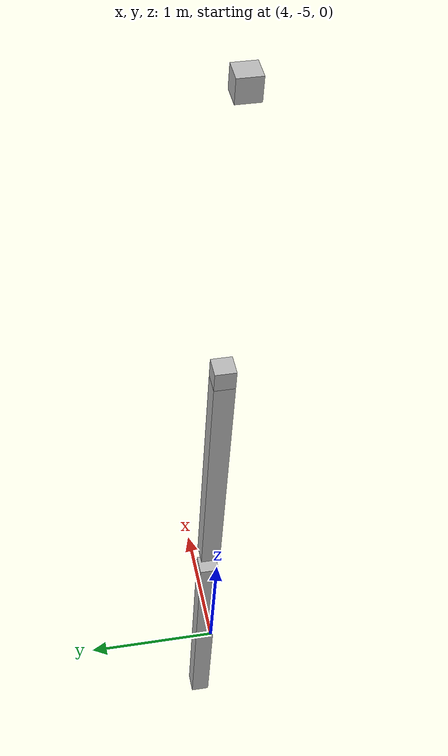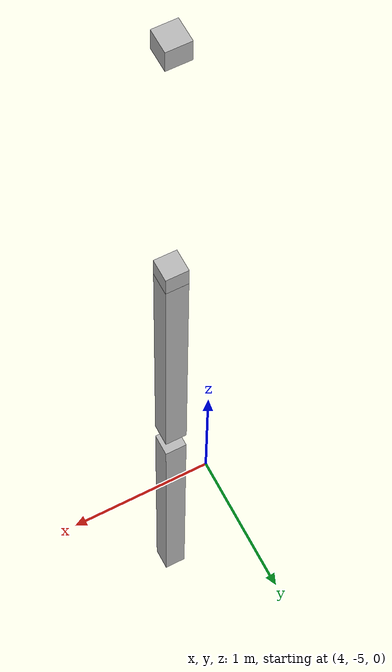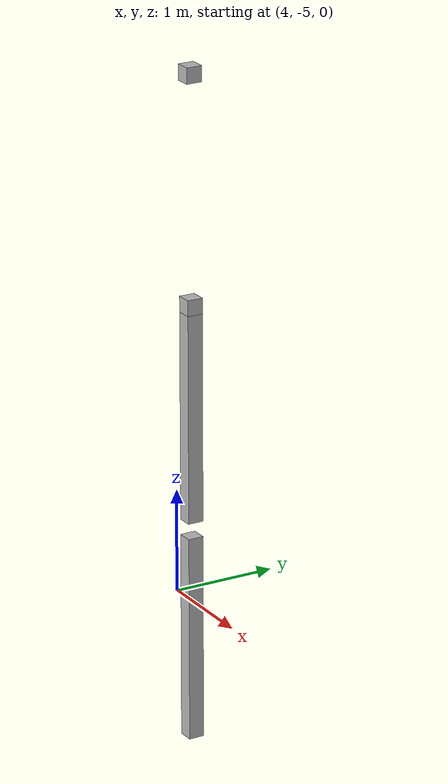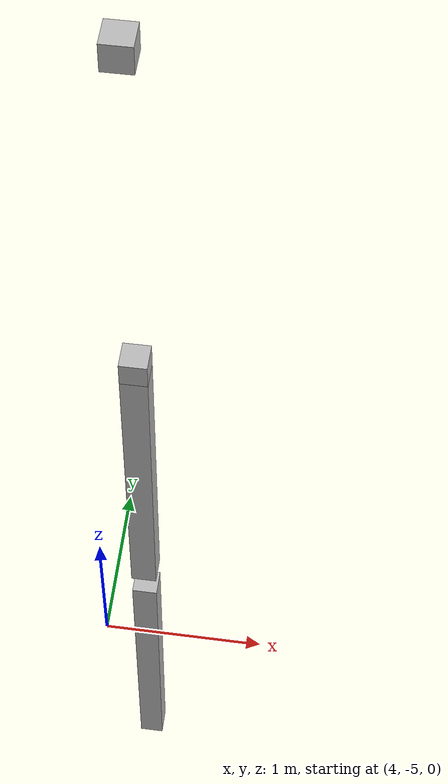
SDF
<sdf version="1.7">
 <world name="default">
  <model name="orthogonal_747_2.000.15_TS">
   <static>1</static>
   <link name="z_link_1_0_5">
    <inertial>
     <mass>1</mass>
     <inertia>
      <ixx>0.166667</ixx>
      <ixy>0</ixy>
      <ixz>0</ixz>
      <iyy>0.166667</iyy>
      <iyz>0</iyz>
      <izz>0.166667</izz>
     </inertia>
    </inertial>
    <pose>10.75 0 2.15 0 -0 0</pose>
    <visual name="visual_0">
     <laser_retro>911</laser_retro>
     <geometry><box><size>0.15 1e-06 2</size></box></geometry>
     <material>
      <script><name>Gazebo/Grey</name><uri>file://media/materials/scripts/gazebo.material</uri></script>
      <shader type="pixel"><normal_map>__default__</normal_map></shader>
      <ambient>0.678 0.498 0.659 1</ambient>
      <diffuse>0.7 0.7 0.7 1</diffuse>
      <specular>0.01 0.01 0.01 1</specular>
      <emissive>0 0 0 1</emissive>
     </material>
     <pose>0 -0.075 0 0 -0 0</pose>
     <transparency>1</transparency>
    </visual>
    <visual name="visual_1">
     <laser_retro>912</laser_retro>
     <geometry><box><size>0.15 1e-06 2</size></box></geometry>
     <material>
      <script><name>Gazebo/Grey</name><uri>file://media/materials/scripts/gazebo.material</uri></script>
      <shader type="pixel"><normal_map>__default__</normal_map></shader>
      <ambient>0.447 0.624 0.812 1</ambient>
      <diffuse>0.7 0.7 0.7 1</diffuse>
      <specular>0.01 0.01 0.01 1</specular>
      <emissive>0 0 0 1</emissive>
     </material>
     <pose>0 0.075 0 0 -0 0</pose>
     <transparency>1</transparency>
    </visual>
    <visual name="visual_2">
     <laser_retro>913</laser_retro>
     <geometry><box><size>0.15 0.15 1e-06</size></box></geometry>
     <material>
      <script><name>Gazebo/Grey</name><uri>file://media/materials/scripts/gazebo.material</uri></script>
      <shader type="pixel"><normal_map>__default__</normal_map></shader>
      <ambient>0.988 0.686 0.243 1</ambient>
      <diffuse>0.7 0.7 0.7 1</diffuse>
      <specular>0.01 0.01 0.01 1</specular>
      <emissive>0 0 0 1</emissive>
     </material>
     <pose>0 0 -1 0 -0 0</pose>
     <transparency>1</transparency>
    </visual>
    <visual name="visual_3">
     <laser_retro>914</laser_retro>
     <geometry><box><size>1e-06 0.15 2</size></box></geometry>
     <material>
      <script><name>Gazebo/Grey</name><uri>file://media/materials/scripts/gazebo.material</uri></script>
      <shader type="pixel"><normal_map>__default__</normal_map></shader>
      <ambient>0.988 0.914 0.31 1</ambient>
      <diffuse>0.7 0.7 0.7 1</diffuse>
      <specular>0.01 0.01 0.01 1</specular>
      <emissive>0 0 0 1</emissive>
     </material>
     <pose>0.075 0 0 0 -0 0</pose>
     <transparency>1</transparency>
    </visual>
    <visual name="visual_4">
     <laser_retro>915</laser_retro>
     <geometry><box><size>0.15 0.15 1e-06</size></box></geometry>
     <material>
      <script><name>Gazebo/Grey</name><uri>file://media/materials/scripts/gazebo.material</uri></script>
      <shader type="pixel"><normal_map>__default__</normal_map></shader>
      <ambient>0.937 0.161 0.161 1</ambient>
      <diffuse>0.7 0.7 0.7 1</diffuse>
      <specular>0.01 0.01 0.01 1</specular>
      <emissive>0 0 0 1</emissive>
     </material>
     <pose>0 0 1 0 -0 0</pose>
     <transparency>1</transparency>
    </visual>
    <visual name="visual_5">
     <laser_retro>916</laser_retro>
     <geometry><box><size>1e-06 0.15 2</size></box></geometry>
     <material>
      <script><name>Gazebo/Grey</name><uri>file://media/materials/scripts/gazebo.material</uri></script>
      <shader type="pixel"><normal_map>__default__</normal_map></shader>
      <ambient>0.541 0.886 0.204 1</ambient>
      <diffuse>0.7 0.7 0.7 1</diffuse>
      <specular>0.01 0.01 0.01 1</specular>
      <emissive>0 0 0 1</emissive>
     </material>
     <pose>-0.075 0 0 0 -0 0</pose>
     <transparency>1</transparency>
    </visual>
    <visual name="visual_texture">
     <geometry><box><size>0.149985 0.149985 1.9998</size></box></geometry>
     <material>
      <script>
       <uri>model://BASE_MODELS/simple_block_v2_textured/materials/scripts</uri>
       <uri>model://BASE_MODELS/simple_block_v2_textured/materials/textures</uri>
       <name>metal</name>
      </script>
     </material>
     <laser_retro>917</laser_retro>
    </visual>
    <collision name="collision">
     <geometry><box><size>0.15 0.15 2</size></box></geometry>
     <surface>
      <friction>
       <ode><mu>1</mu><mu2>1</mu2><fdir1>0 0 0</fdir1><slip1>0</slip1><slip2>0</slip2></ode>
       <torsional>
        <coefficient>1</coefficient>
        <patch_radius>0</patch_radius>
        <surface_radius>0</surface_radius>
        <use_patch_radius>1</use_patch_radius>
        <ode><slip>0</slip></ode>
       </torsional>
      </friction>
      <bounce><restitution_coefficient>0</restitution_coefficient><threshold>1e+06</threshold></bounce>
      <contact>
       <collide_without_contact>0</collide_without_contact>
       <collide_without_contact_bitmask>1</collide_without_contact_bitmask>
       <collide_bitmask>1</collide_bitmask>
       <ode>
        <soft_cfm>0</soft_cfm>
        <soft_erp>0.2</soft_erp>
        <kp>1e+13</kp>
        <kd>1</kd>
        <max_vel>0.01</max_vel>
        <min_depth>0</min_depth>
       </ode>
       <bullet>
        <split_impulse>1</split_impulse>
        <split_impulse_penetration_threshold>-0.01</split_impulse_penetration_threshold>
        <soft_cfm>0</soft_cfm>
        <soft_erp>0.2</soft_erp>
        <kp>1e+13</kp>
        <kd>1</kd>
       </bullet>
      </contact>
     </surface>
    </collision>
   </link>
   <link name="u_link_2_0_5">
    <inertial>
     <mass>1</mass>
     <inertia>
      <ixx>0.166667</ixx>
      <ixy>0</ixy>
      <ixz>0</ixz>
      <iyy>0.166667</iyy>
      <iyz>0</iyz>
      <izz>0.166667</izz>
     </inertia>
    </inertial>
    <pose>10.75 0 5.375 0 -0 0</pose>
    <visual name="visual_0">
     <laser_retro>1807</laser_retro>
     <geometry><box><size>0.15 1e-06 0.15</size></box></geometry>
     <material>
      <script><name>Gazebo/Grey</name><uri>file://media/materials/scripts/gazebo.material</uri></script>
      <shader type="pixel"><normal_map>__default__</normal_map></shader>
      <ambient>0.678 0.498 0.659 1</ambient>
      <diffuse>0.7 0.7 0.7 1</diffuse>
      <specular>0.01 0.01 0.01 1</specular>
      <emissive>0 0 0 1</emissive>
     </material>
     <pose>0 -0.075 0 0 -0 0</pose>
     <transparency>1</transparency>
    </visual>
    <visual name="visual_1">
     <laser_retro>1808</laser_retro>
     <geometry><box><size>0.15 1e-06 0.15</size></box></geometry>
     <material>
      <script><name>Gazebo/Grey</name><uri>file://media/materials/scripts/gazebo.material</uri></script>
      <shader type="pixel"><normal_map>__default__</normal_map></shader>
      <ambient>0.447 0.624 0.812 1</ambient>
      <diffuse>0.7 0.7 0.7 1</diffuse>
      <specular>0.01 0.01 0.01 1</specular>
      <emissive>0 0 0 1</emissive>
     </material>
     <pose>0 0.075 0 0 -0 0</pose>
     <transparency>1</transparency>
    </visual>
    <visual name="visual_2">
     <laser_retro>1809</laser_retro>
     <geometry><box><size>0.15 0.15 1e-06</size></box></geometry>
     <material>
      <script><name>Gazebo/Grey</name><uri>file://media/materials/scripts/gazebo.material</uri></script>
      <shader type="pixel"><normal_map>__default__</normal_map></shader>
      <ambient>0.988 0.686 0.243 1</ambient>
      <diffuse>0.7 0.7 0.7 1</diffuse>
      <specular>0.01 0.01 0.01 1</specular>
      <emissive>0 0 0 1</emissive>
     </material>
     <pose>0 0 -0.075 0 -0 0</pose>
     <transparency>1</transparency>
    </visual>
    <visual name="visual_3">
     <laser_retro>1810</laser_retro>
     <geometry><box><size>1e-06 0.15 0.15</size></box></geometry>
     <material>
      <script><name>Gazebo/Grey</name><uri>file://media/materials/scripts/gazebo.material</uri></script>
      <shader type="pixel"><normal_map>__default__</normal_map></shader>
      <ambient>0.988 0.914 0.31 1</ambient>
      <diffuse>0.7 0.7 0.7 1</diffuse>
      <specular>0.01 0.01 0.01 1</specular>
      <emissive>0 0 0 1</emissive>
     </material>
     <pose>0.075 0 0 0 -0 0</pose>
     <transparency>1</transparency>
    </visual>
    <visual name="visual_4">
     <laser_retro>1811</laser_retro>
     <geometry><box><size>0.15 0.15 1e-06</size></box></geometry>
     <material>
      <script><name>Gazebo/Grey</name><uri>file://media/materials/scripts/gazebo.material</uri></script>
      <shader type="pixel"><normal_map>__default__</normal_map></shader>
      <ambient>0.937 0.161 0.161 1</ambient>
      <diffuse>0.7 0.7 0.7 1</diffuse>
      <specular>0.01 0.01 0.01 1</specular>
      <emissive>0 0 0 1</emissive>
     </material>
     <pose>0 0 0.075 0 -0 0</pose>
     <transparency>1</transparency>
    </visual>
    <visual name="visual_5">
     <laser_retro>1812</laser_retro>
     <geometry><box><size>1e-06 0.15 0.15</size></box></geometry>
     <material>
      <script><name>Gazebo/Grey</name><uri>file://media/materials/scripts/gazebo.material</uri></script>
      <shader type="pixel"><normal_map>__default__</normal_map></shader>
      <ambient>0.541 0.886 0.204 1</ambient>
      <diffuse>0.7 0.7 0.7 1</diffuse>
      <specular>0.01 0.01 0.01 1</specular>
      <emissive>0 0 0 1</emissive>
     </material>
     <pose>-0.075 0 0 0 -0 0</pose>
     <transparency>1</transparency>
    </visual>
    <visual name="visual_texture">
     <geometry><box><size>0.149985 0.149985 0.149985</size></box></geometry>
     <material>
      <script>
       <uri>model://BASE_MODELS/simple_block_v2_textured/materials/scripts</uri>
       <uri>model://BASE_MODELS/simple_block_v2_textured/materials/textures</uri>
       <name>metal</name>
      </script>
     </material>
     <laser_retro>1813</laser_retro>
    </visual>
    <collision name="collision">
     <geometry><box><size>0.15 0.15 0.15</size></box></geometry>
     <surface>
      <friction>
       <ode><mu>1</mu><mu2>1</mu2><fdir1>0 0 0</fdir1><slip1>0</slip1><slip2>0</slip2></ode>
       <torsional>
        <coefficient>1</coefficient>
        <patch_radius>0</patch_radius>
        <surface_radius>0</surface_radius>
        <use_patch_radius>1</use_patch_radius>
        <ode><slip>0</slip></ode>
       </torsional>
      </friction>
      <bounce><restitution_coefficient>0</restitution_coefficient><threshold>1e+06</threshold></bounce>
      <contact>
       <collide_without_contact>0</collide_without_contact>
       <collide_without_contact_bitmask>1</collide_without_contact_bitmask>
       <collide_bitmask>1</collide_bitmask>
       <ode>
        <soft_cfm>0</soft_cfm>
        <soft_erp>0.2</soft_erp>
        <kp>1e+13</kp>
        <kd>1</kd>
        <max_vel>0.01</max_vel>
        <min_depth>0</min_depth>
       </ode>
       <bullet>
        <split_impulse>1</split_impulse>
        <split_impulse_penetration_threshold>-0.01</split_impulse_penetration_threshold>
        <soft_cfm>0</soft_cfm>
        <soft_erp>0.2</soft_erp>
        <kp>1e+13</kp>
        <kd>1</kd>
       </bullet>
      </contact>
     </surface>
    </collision>
   </link>
   <link name="z_link_2_0_5">
    <inertial>
     <mass>1</mass>
     <inertia>
      <ixx>0.166667</ixx>
      <ixy>0</ixy>
      <ixz>0</ixz>
      <iyy>0.166667</iyy>
      <iyz>0</iyz>
      <izz>0.166667</izz>
     </inertia>
    </inertial>
    <pose>10.75 0 4.3 0 -0 0</pose>
    <visual name="visual_0">
     <laser_retro>1814</laser_retro>
     <geometry><box><size>0.15 1e-06 2</size></box></geometry>
     <material>
      <script><name>Gazebo/Grey</name><uri>file://media/materials/scripts/gazebo.material</uri></script>
      <shader type="pixel"><normal_map>__default__</normal_map></shader>
      <ambient>0.678 0.498 0.659 1</ambient>
      <diffuse>0.7 0.7 0.7 1</diffuse>
      <specular>0.01 0.01 0.01 1</specular>
      <emissive>0 0 0 1</emissive>
     </material>
     <pose>0 -0.075 0 0 -0 0</pose>
     <transparency>1</transparency>
    </visual>
    <visual name="visual_1">
     <laser_retro>1815</laser_retro>
     <geometry><box><size>0.15 1e-06 2</size></box></geometry>
     <material>
      <script><name>Gazebo/Grey</name><uri>file://media/materials/scripts/gazebo.material</uri></script>
      <shader type="pixel"><normal_map>__default__</normal_map></shader>
      <ambient>0.447 0.624 0.812 1</ambient>
      <diffuse>0.7 0.7 0.7 1</diffuse>
      <specular>0.01 0.01 0.01 1</specular>
      <emissive>0 0 0 1</emissive>
     </material>
     <pose>0 0.075 0 0 -0 0</pose>
     <transparency>1</transparency>
    </visual>
    <visual name="visual_2">
     <laser_retro>1816</laser_retro>
     <geometry><box><size>0.15 0.15 1e-06</size></box></geometry>
     <material>
      <script><name>Gazebo/Grey</name><uri>file://media/materials/scripts/gazebo.material</uri></script>
      <shader type="pixel"><normal_map>__default__</normal_map></shader>
      <ambient>0.988 0.686 0.243 1</ambient>
      <diffuse>0.7 0.7 0.7 1</diffuse>
      <specular>0.01 0.01 0.01 1</specular>
      <emissive>0 0 0 1</emissive>
     </material>
     <pose>0 0 -1 0 -0 0</pose>
     <transparency>1</transparency>
    </visual>
    <visual name="visual_3">
     <laser_retro>1817</laser_retro>
     <geometry><box><size>1e-06 0.15 2</size></box></geometry>
     <material>
      <script><name>Gazebo/Grey</name><uri>file://media/materials/scripts/gazebo.material</uri></script>
      <shader type="pixel"><normal_map>__default__</normal_map></shader>
      <ambient>0.988 0.914 0.31 1</ambient>
      <diffuse>0.7 0.7 0.7 1</diffuse>
      <specular>0.01 0.01 0.01 1</specular>
      <emissive>0 0 0 1</emissive>
     </material>
     <pose>0.075 0 0 0 -0 0</pose>
     <transparency>1</transparency>
    </visual>
    <visual name="visual_4">
     <laser_retro>1818</laser_retro>
     <geometry><box><size>0.15 0.15 1e-06</size></box></geometry>
     <material>
      <script><name>Gazebo/Grey</name><uri>file://media/materials/scripts/gazebo.material</uri></script>
      <shader type="pixel"><normal_map>__default__</normal_map></shader>
      <ambient>0.937 0.161 0.161 1</ambient>
      <diffuse>0.7 0.7 0.7 1</diffuse>
      <specular>0.01 0.01 0.01 1</specular>
      <emissive>0 0 0 1</emissive>
     </material>
     <pose>0 0 1 0 -0 0</pose>
     <transparency>1</transparency>
    </visual>
    <visual name="visual_5">
     <laser_retro>1819</laser_retro>
     <geometry><box><size>1e-06 0.15 2</size></box></geometry>
     <material>
      <script><name>Gazebo/Grey</name><uri>file://media/materials/scripts/gazebo.material</uri></script>
      <shader type="pixel"><normal_map>__default__</normal_map></shader>
      <ambient>0.541 0.886 0.204 1</ambient>
      <diffuse>0.7 0.7 0.7 1</diffuse>
      <specular>0.01 0.01 0.01 1</specular>
      <emissive>0 0 0 1</emissive>
     </material>
     <pose>-0.075 0 0 0 -0 0</pose>
     <transparency>1</transparency>
    </visual>
    <visual name="visual_texture">
     <geometry><box><size>0.149985 0.149985 1.9998</size></box></geometry>
     <material>
      <script>
       <uri>model://BASE_MODELS/simple_block_v2_textured/materials/scripts</uri>
       <uri>model://BASE_MODELS/simple_block_v2_textured/materials/textures</uri>
       <name>metal</name>
      </script>
     </material>
     <laser_retro>1820</laser_retro>
    </visual>
    <collision name="collision">
     <geometry><box><size>0.15 0.15 2</size></box></geometry>
     <surface>
      <friction>
       <ode><mu>1</mu><mu2>1</mu2><fdir1>0 0 0</fdir1><slip1>0</slip1><slip2>0</slip2></ode>
       <torsional>
        <coefficient>1</coefficient>
        <patch_radius>0</patch_radius>
        <surface_radius>0</surface_radius>
        <use_patch_radius>1</use_patch_radius>
        <ode><slip>0</slip></ode>
       </torsional>
      </friction>
      <bounce><restitution_coefficient>0</restitution_coefficient><threshold>1e+06</threshold></bounce>
      <contact>
       <collide_without_contact>0</collide_without_contact>
       <collide_without_contact_bitmask>1</collide_without_contact_bitmask>
       <collide_bitmask>1</collide_bitmask>
       <ode>
        <soft_cfm>0</soft_cfm>
        <soft_erp>0.2</soft_erp>
        <kp>1e+13</kp>
        <kd>1</kd>
        <max_vel>0.01</max_vel>
        <min_depth>0</min_depth>
       </ode>
       <bullet>
        <split_impulse>1</split_impulse>
        <split_impulse_penetration_threshold>-0.01</split_impulse_penetration_threshold>
        <soft_cfm>0</soft_cfm>
        <soft_erp>0.2</soft_erp>
        <kp>1e+13</kp>
        <kd>1</kd>
       </bullet>
      </contact>
     </surface>
    </collision>
   </link>
   <link name="u_link_3_0_5">
    <inertial>
     <mass>1</mass>
     <inertia>
      <ixx>0.166667</ixx>
      <ixy>0</ixy>
      <ixz>0</ixz>
      <iyy>0.166667</iyy>
      <iyz>0</iyz>
      <izz>0.166667</izz>
     </inertia>
    </inertial>
    <pose>10.75 0 7.525 0 -0 0</pose>
    <visual name="visual_0">
     <laser_retro>2710</laser_retro>
     <geometry><box><size>0.15 1e-06 0.15</size></box></geometry>
     <material>
      <script><name>Gazebo/Grey</name><uri>file://media/materials/scripts/gazebo.material</uri></script>
      <shader type="pixel"><normal_map>__default__</normal_map></shader>
      <ambient>0.678 0.498 0.659 1</ambient>
      <diffuse>0.7 0.7 0.7 1</diffuse>
      <specular>0.01 0.01 0.01 1</specular>
      <emissive>0 0 0 1</emissive>
     </material>
     <pose>0 -0.075 0 0 -0 0</pose>
     <transparency>1</transparency>
    </visual>
    <visual name="visual_1">
     <laser_retro>2711</laser_retro>
     <geometry><box><size>0.15 1e-06 0.15</size></box></geometry>
     <material>
      <script><name>Gazebo/Grey</name><uri>file://media/materials/scripts/gazebo.material</uri></script>
      <shader type="pixel"><normal_map>__default__</normal_map></shader>
      <ambient>0.447 0.624 0.812 1</ambient>
      <diffuse>0.7 0.7 0.7 1</diffuse>
      <specular>0.01 0.01 0.01 1</specular>
      <emissive>0 0 0 1</emissive>
     </material>
     <pose>0 0.075 0 0 -0 0</pose>
     <transparency>1</transparency>
    </visual>
    <visual name="visual_2">
     <laser_retro>2712</laser_retro>
     <geometry><box><size>0.15 0.15 1e-06</size></box></geometry>
     <material>
      <script><name>Gazebo/Grey</name><uri>file://media/materials/scripts/gazebo.material</uri></script>
      <shader type="pixel"><normal_map>__default__</normal_map></shader>
      <ambient>0.988 0.686 0.243 1</ambient>
      <diffuse>0.7 0.7 0.7 1</diffuse>
      <specular>0.01 0.01 0.01 1</specular>
      <emissive>0 0 0 1</emissive>
     </material>
     <pose>0 0 -0.075 0 -0 0</pose>
     <transparency>1</transparency>
    </visual>
    <visual name="visual_3">
     <laser_retro>2713</laser_retro>
     <geometry><box><size>1e-06 0.15 0.15</size></box></geometry>
     <material>
      <script><name>Gazebo/Grey</name><uri>file://media/materials/scripts/gazebo.material</uri></script>
      <shader type="pixel"><normal_map>__default__</normal_map></shader>
      <ambient>0.988 0.914 0.31 1</ambient>
      <diffuse>0.7 0.7 0.7 1</diffuse>
      <specular>0.01 0.01 0.01 1</specular>
      <emissive>0 0 0 1</emissive>
     </material>
     <pose>0.075 0 0 0 -0 0</pose>
     <transparency>1</transparency>
    </visual>
    <visual name="visual_4">
     <laser_retro>2714</laser_retro>
     <geometry><box><size>0.15 0.15 1e-06</size></box></geometry>
     <material>
      <script><name>Gazebo/Grey</name><uri>file://media/materials/scripts/gazebo.material</uri></script>
      <shader type="pixel"><normal_map>__default__</normal_map></shader>
      <ambient>0.937 0.161 0.161 1</ambient>
      <diffuse>0.7 0.7 0.7 1</diffuse>
      <specular>0.01 0.01 0.01 1</specular>
      <emissive>0 0 0 1</emissive>
     </material>
     <pose>0 0 0.075 0 -0 0</pose>
     <transparency>1</transparency>
    </visual>
    <visual name="visual_5">
     <laser_retro>2715</laser_retro>
     <geometry><box><size>1e-06 0.15 0.15</size></box></geometry>
     <material>
      <script><name>Gazebo/Grey</name><uri>file://media/materials/scripts/gazebo.material</uri></script>
      <shader type="pixel"><normal_map>__default__</normal_map></shader>
      <ambient>0.541 0.886 0.204 1</ambient>
      <diffuse>0.7 0.7 0.7 1</diffuse>
      <specular>0.01 0.01 0.01 1</specular>
      <emissive>0 0 0 1</emissive>
     </material>
     <pose>-0.075 0 0 0 -0 0</pose>
     <transparency>1</transparency>
    </visual>
    <visual name="visual_texture">
     <geometry><box><size>0.149985 0.149985 0.149985</size></box></geometry>
     <material>
      <script>
       <uri>model://BASE_MODELS/simple_block_v2_textured/materials/scripts</uri>
       <uri>model://BASE_MODELS/simple_block_v2_textured/materials/textures</uri>
       <name>metal</name>
      </script>
     </material>
     <laser_retro>2716</laser_retro>
    </visual>
    <collision name="collision">
     <geometry><box><size>0.15 0.15 0.15</size></box></geometry>
     <surface>
      <friction>
       <ode><mu>1</mu><mu2>1</mu2><fdir1>0 0 0</fdir1><slip1>0</slip1><slip2>0</slip2></ode>
       <torsional>
        <coefficient>1</coefficient>
        <patch_radius>0</patch_radius>
        <surface_radius>0</surface_radius>
        <use_patch_radius>1</use_patch_radius>
        <ode><slip>0</slip></ode>
       </torsional>
      </friction>
      <bounce><restitution_coefficient>0</restitution_coefficient><threshold>1e+06</threshold></bounce>
      <contact>
       <collide_without_contact>0</collide_without_contact>
       <collide_without_contact_bitmask>1</collide_without_contact_bitmask>
       <collide_bitmask>1</collide_bitmask>
       <ode>
        <soft_cfm>0</soft_cfm>
        <soft_erp>0.2</soft_erp>
        <kp>1e+13</kp>
        <kd>1</kd>
        <max_vel>0.01</max_vel>
        <min_depth>0</min_depth>
       </ode>
       <bullet>
        <split_impulse>1</split_impulse>
        <split_impulse_penetration_threshold>-0.01</split_impulse_penetration_threshold>
        <soft_cfm>0</soft_cfm>
        <soft_erp>0.2</soft_erp>
        <kp>1e+13</kp>
        <kd>1</kd>
       </bullet>
      </contact>
     </surface>
    </collision>
   </link>
   <pose>-6.47624 -5 -2.5 0 -0 0</pose>
  </model>
 </world>
</sdf>
